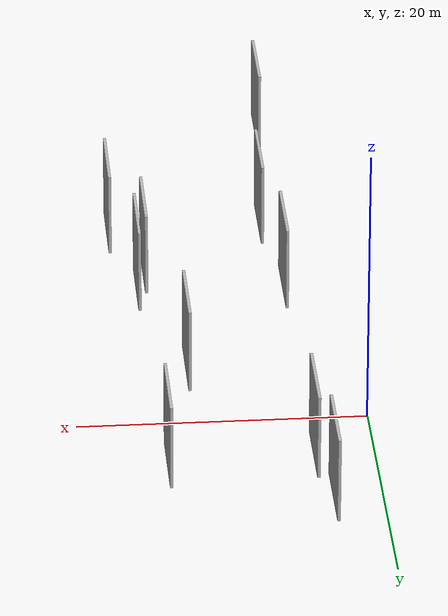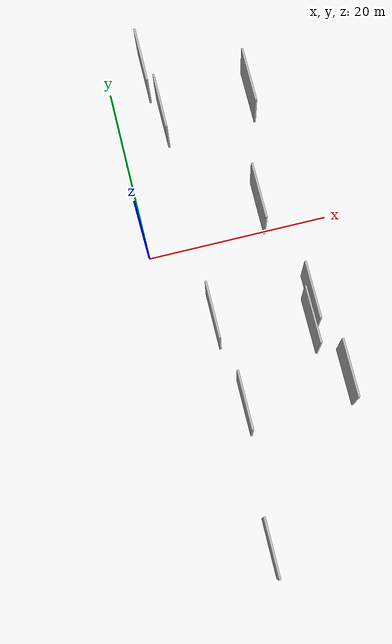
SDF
<sdf version="1.6">
 <world name="default">
  <scene>
   <sky><clouds><speed>12</speed></clouds></sky>
   <ambient>0.4 0.4 0.4 1</ambient>
   <background>0.7 0.7 0.7 1</background>
   <shadows>1</shadows>
  </scene>
  <gravity>0 0 -9.8066</gravity>
  <magnetic_field>6e-06 2.3e-05 -4.2e-05</magnetic_field>
  <physics default="0" name="default_physics" type="ode">
   <ode>
    <solver>
     <type>quick</type>
     <iters>10</iters>
     <sor>1.0</sor>
     <use_dynamic_moi_rescaling>0</use_dynamic_moi_rescaling>
    </solver>
    <constraints>
     <cfm>0</cfm>
     <erp>0.2</erp>
     <contact_max_correcting_vel>100</contact_max_correcting_vel>
     <contact_surface_layer>0.001</contact_surface_layer>
    </constraints>
   </ode>
   <max_step_size>0.004</max_step_size>
   <real_time_factor>1</real_time_factor>
   <real_time_update_rate>250</real_time_update_rate>
  </physics>
  <light name="sun" type="directional">
   <pose>0 0 10 0 0 0</pose>
   <diffuse>0.8 0.8 0.8 1</diffuse>
   <specular>0.2 0.2 0.2 1</specular>
   <attenuation>
    <range>1000</range>
    <constant>0.9</constant>
    <linear>0.01</linear>
    <quadratic>0.001</quadratic>
   </attenuation>
   <direction>-0.5 0.1 -0.9</direction>
  </light>
  <model name="grey_wall_1">
   <static>1</static>
   <pose>5.8786 -19.1705 5.0 0.000000 0.000000 1.570796</pose>
   <link name="link">
    <pose>0 0 3.00 0 0 0</pose>
    <collision name="collision"><geometry><box><size>6.00 0.2 6.00</size></box></geometry></collision>
    <visual name="visual">
     <cast_shadows>0</cast_shadows>
     <geometry><box><size>6.00 0.2 6.00</size></box></geometry>
     <material>
      <script>
       <uri>model://HANNAS_wall/materials/scripts</uri>
       <uri>model://HANNAS_wall/materials/textures</uri>
       <name>vrc/HANNAS_wall</name>
      </script>
     </material>
    </visual>
   </link>
  </model>
  <model name="grey_wall_2">
   <static>1</static>
   <pose>4.1194 18.8262 5.0 0.000000 0.000000 1.570796</pose>
   <link name="link">
    <pose>0 0 3.00 0 0 0</pose>
    <collision name="collision"><geometry><box><size>6.00 0.2 6.00</size></box></geometry></collision>
    <visual name="visual">
     <cast_shadows>0</cast_shadows>
     <geometry><box><size>6.00 0.2 6.00</size></box></geometry>
     <material>
      <script>
       <uri>model://HANNAS_wall/materials/scripts</uri>
       <uri>model://HANNAS_wall/materials/textures</uri>
       <name>vrc/HANNAS_wall</name>
      </script>
     </material>
    </visual>
   </link>
  </model>
  <model name="grey_wall_3">
   <static>1</static>
   <pose>14.5171 -12.5287 5.0 0.000000 0.000000 1.570796</pose>
   <link name="link">
    <pose>0 0 3.00 0 0 0</pose>
    <collision name="collision"><geometry><box><size>6.00 0.2 6.00</size></box></geometry></collision>
    <visual name="visual">
     <cast_shadows>0</cast_shadows>
     <geometry><box><size>6.00 0.2 6.00</size></box></geometry>
     <material>
      <script>
       <uri>model://HANNAS_wall/materials/scripts</uri>
       <uri>model://HANNAS_wall/materials/textures</uri>
       <name>vrc/HANNAS_wall</name>
      </script>
     </material>
    </visual>
   </link>
  </model>
  <model name="grey_wall_4">
   <static>1</static>
   <pose>4.9059 13.2712 5.0 0.000000 0.000000 1.570796</pose>
   <link name="link">
    <pose>0 0 3.00 0 0 0</pose>
    <collision name="collision"><geometry><box><size>6.00 0.2 6.00</size></box></geometry></collision>
    <visual name="visual">
     <cast_shadows>0</cast_shadows>
     <geometry><box><size>6.00 0.2 6.00</size></box></geometry>
     <material>
      <script>
       <uri>model://HANNAS_wall/materials/scripts</uri>
       <uri>model://HANNAS_wall/materials/textures</uri>
       <name>vrc/HANNAS_wall</name>
      </script>
     </material>
    </visual>
   </link>
  </model>
  <model name="grey_wall_5">
   <static>1</static>
   <pose>14.6262 13.8897 5.0 0.000000 0.000000 1.570796</pose>
   <link name="link">
    <pose>0 0 3.00 0 0 0</pose>
    <collision name="collision"><geometry><box><size>6.00 0.2 6.00</size></box></geometry></collision>
    <visual name="visual">
     <cast_shadows>0</cast_shadows>
     <geometry><box><size>6.00 0.2 6.00</size></box></geometry>
     <material>
      <script>
       <uri>model://HANNAS_wall/materials/scripts</uri>
       <uri>model://HANNAS_wall/materials/textures</uri>
       <name>vrc/HANNAS_wall</name>
      </script>
     </material>
    </visual>
   </link>
  </model>
  <model name="grey_wall_6">
   <static>1</static>
   <pose>4.9524 -9.6938 5.0 0.000000 0.000000 1.570796</pose>
   <link name="link">
    <pose>0 0 3.00 0 0 0</pose>
    <collision name="collision"><geometry><box><size>6.00 0.2 6.00</size></box></geometry></collision>
    <visual name="visual">
     <cast_shadows>0</cast_shadows>
     <geometry><box><size>6.00 0.2 6.00</size></box></geometry>
     <material>
      <script>
       <uri>model://HANNAS_wall/materials/scripts</uri>
       <uri>model://HANNAS_wall/materials/textures</uri>
       <name>vrc/HANNAS_wall</name>
      </script>
     </material>
    </visual>
   </link>
  </model>
  <model name="grey_wall_7">
   <static>1</static>
   <pose>12.4971 1.2740 5.0 0.000000 0.000000 1.570796</pose>
   <link name="link">
    <pose>0 0 3.00 0 0 0</pose>
    <collision name="collision"><geometry><box><size>6.00 0.2 6.00</size></box></geometry></collision>
    <visual name="visual">
     <cast_shadows>0</cast_shadows>
     <geometry><box><size>6.00 0.2 6.00</size></box></geometry>
     <material>
      <script>
       <uri>model://HANNAS_wall/materials/scripts</uri>
       <uri>model://HANNAS_wall/materials/textures</uri>
       <name>vrc/HANNAS_wall</name>
      </script>
     </material>
    </visual>
   </link>
  </model>
  <model name="grey_wall_8">
   <static>1</static>
   <pose>16.6928 -18.5820 5.0 0.000000 0.000000 1.570796</pose>
   <link name="link">
    <pose>0 0 3.00 0 0 0</pose>
    <collision name="collision"><geometry><box><size>6.00 0.2 6.00</size></box></geometry></collision>
    <visual name="visual">
     <cast_shadows>0</cast_shadows>
     <geometry><box><size>6.00 0.2 6.00</size></box></geometry>
     <material>
      <script>
       <uri>model://HANNAS_wall/materials/scripts</uri>
       <uri>model://HANNAS_wall/materials/textures</uri>
       <name>vrc/HANNAS_wall</name>
      </script>
     </material>
    </visual>
   </link>
  </model>
  <model name="grey_wall_9">
   <static>1</static>
   <pose>15.1367 -10.0996 5.0 0.000000 0.000000 1.570796</pose>
   <link name="link">
    <pose>0 0 3.00 0 0 0</pose>
    <collision name="collision"><geometry><box><size>6.00 0.2 6.00</size></box></geometry></collision>
    <visual name="visual">
     <cast_shadows>0</cast_shadows>
     <geometry><box><size>6.00 0.2 6.00</size></box></geometry>
     <material>
      <script>
       <uri>model://HANNAS_wall/materials/scripts</uri>
       <uri>model://HANNAS_wall/materials/textures</uri>
       <name>vrc/HANNAS_wall</name>
      </script>
     </material>
    </visual>
   </link>
  </model>
  <model name="grey_wall_10">
   <static>1</static>
   <pose>4.9128 -33.3847 5.0 0.000000 0.000000 1.570796</pose>
   <link name="link">
    <pose>0 0 3.00 0 0 0</pose>
    <collision name="collision"><geometry><box><size>6.00 0.2 6.00</size></box></geometry></collision>
    <visual name="visual">
     <cast_shadows>0</cast_shadows>
     <geometry><box><size>6.00 0.2 6.00</size></box></geometry>
     <material>
      <script>
       <uri>model://HANNAS_wall/materials/scripts</uri>
       <uri>model://HANNAS_wall/materials/textures</uri>
       <name>vrc/HANNAS_wall</name>
      </script>
     </material>
    </visual>
   </link>
  </model>
 </world>
</sdf>
